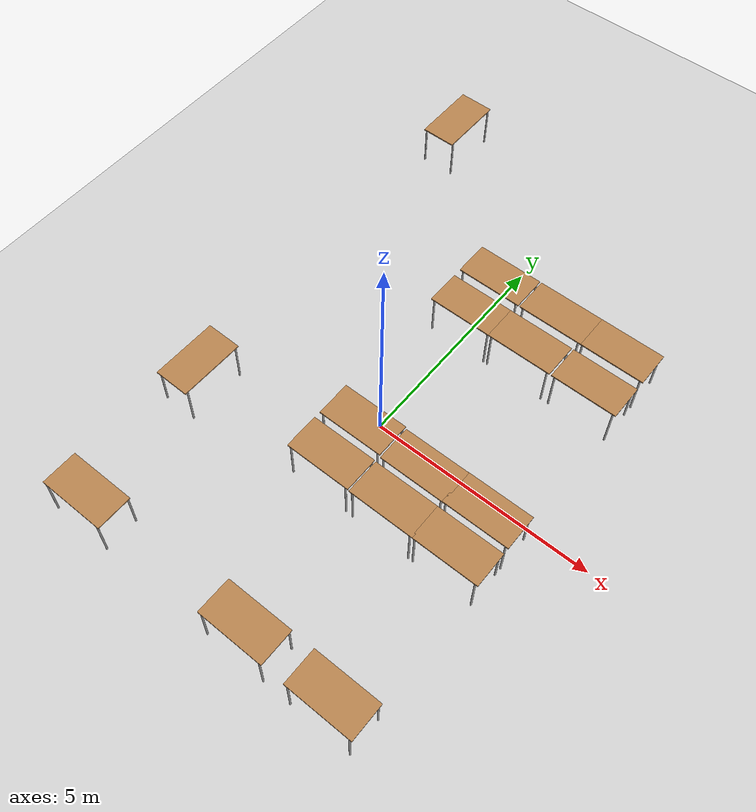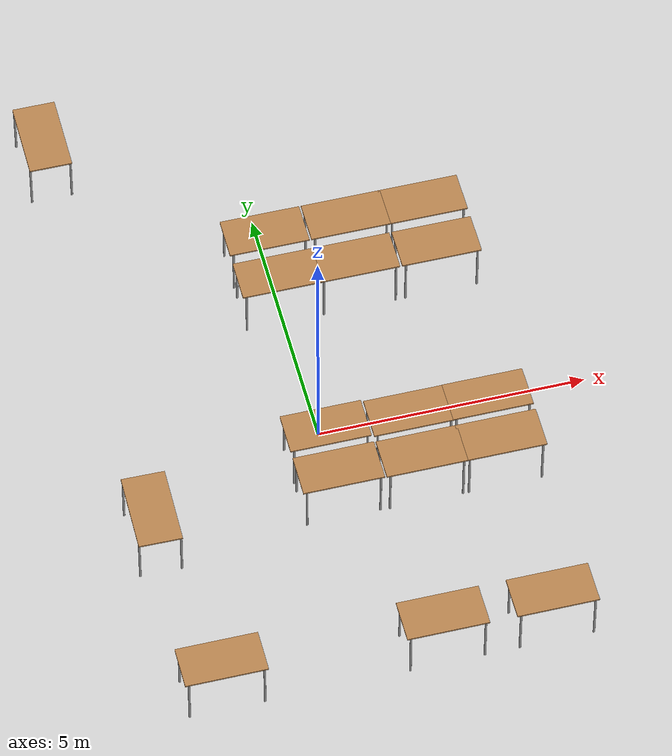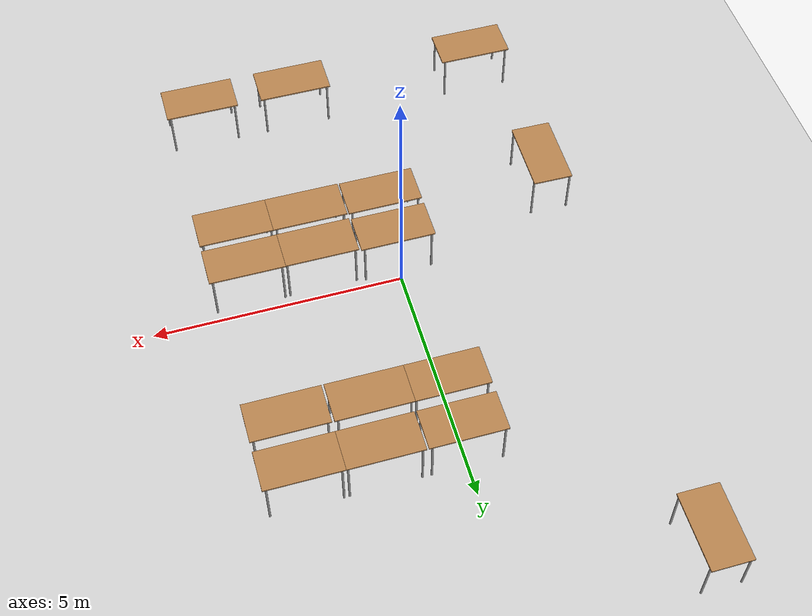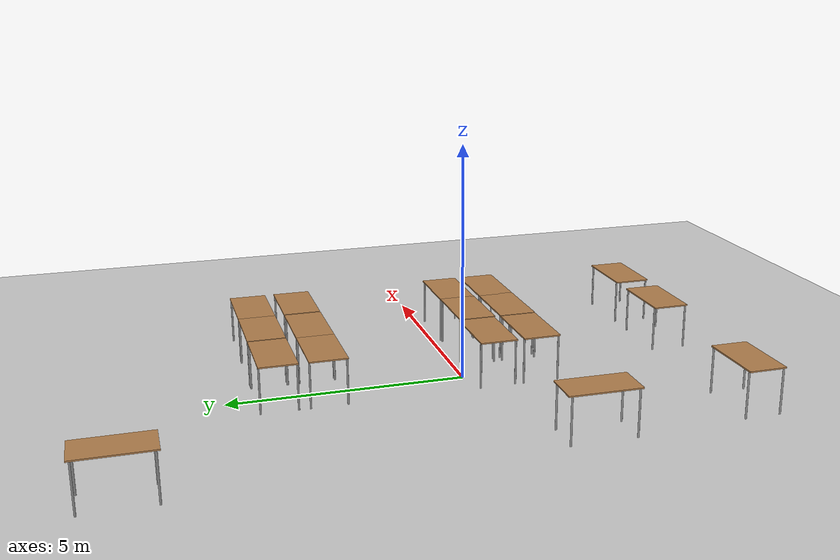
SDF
<sdf version="1.4">
 <world name="default">
  <model name="ground_plane">
   <static>1</static>
   <link name="link">
    <collision name="collision">
     <geometry><plane><normal>0 0 1</normal><size>100 100</size></plane></geometry>
     <surface><friction><ode><mu>100</mu><mu2>50</mu2></ode></friction></surface>
    </collision>
    <visual name="visual">
     <cast_shadows>0</cast_shadows>
     <geometry><plane><normal>0 0 1</normal><size>100 100</size></plane></geometry>
     <material>
      <script><uri>file://media/materials/scripts/gazebo.material</uri><name>Gazebo/Grey</name></script>
     </material>
    </visual>
    <velocity_decay><linear>0</linear><angular>0</angular></velocity_decay>
   </link>
  </model>
  <model name="table">
   <static>1</static>
   <link name="link">
    <collision name="surface">
     <pose>0 0 1 0 -0 0</pose>
     <geometry><box><size>1.5 0.8 0.03</size></box></geometry>
     <surface><friction><ode><mu>0.6</mu><mu2>0.6</mu2></ode></friction></surface>
    </collision>
    <visual name="visual1">
     <pose>0 0 1 0 -0 0</pose>
     <geometry><box><size>1.5 0.8 0.03</size></box></geometry>
     <material>
      <script><uri>file://media/materials/scripts/gazebo.material</uri><name>Gazebo/Wood</name></script>
     </material>
    </visual>
    <collision name="front_left_leg">
     <pose>0.68 0.38 0.5 0 -0 0</pose>
     <geometry><cylinder><radius>0.02</radius><length>1</length></cylinder></geometry>
    </collision>
    <visual name="front_left_leg">
     <pose>0.68 0.38 0.5 0 -0 0</pose>
     <geometry><cylinder><radius>0.02</radius><length>1</length></cylinder></geometry>
     <material>
      <script><uri>file://media/materials/scripts/gazebo.material</uri><name>Gazebo/Grey</name></script>
     </material>
    </visual>
    <collision name="front_right_leg">
     <pose>0.68 -0.38 0.5 0 -0 0</pose>
     <geometry><cylinder><radius>0.02</radius><length>1</length></cylinder></geometry>
    </collision>
    <visual name="front_right_leg">
     <pose>0.68 -0.38 0.5 0 -0 0</pose>
     <geometry><cylinder><radius>0.02</radius><length>1</length></cylinder></geometry>
     <material>
      <script><uri>file://media/materials/scripts/gazebo.material</uri><name>Gazebo/Grey</name></script>
     </material>
    </visual>
    <collision name="back_right_leg">
     <pose>-0.68 -0.38 0.5 0 -0 0</pose>
     <geometry><cylinder><radius>0.02</radius><length>1</length></cylinder></geometry>
    </collision>
    <visual name="back_right_leg">
     <pose>-0.68 -0.38 0.5 0 -0 0</pose>
     <geometry><cylinder><radius>0.02</radius><length>1</length></cylinder></geometry>
     <material>
      <script><uri>file://media/materials/scripts/gazebo.material</uri><name>Gazebo/Grey</name></script>
     </material>
    </visual>
    <collision name="back_left_leg">
     <pose>-0.68 0.38 0.5 0 -0 0</pose>
     <geometry><cylinder><radius>0.02</radius><length>1</length></cylinder></geometry>
    </collision>
    <visual name="back_left_leg">
     <pose>-0.68 0.38 0.5 0 -0 0</pose>
     <geometry><cylinder><radius>0.02</radius><length>1</length></cylinder></geometry>
     <material>
      <script><uri>file://media/materials/scripts/gazebo.material</uri><name>Gazebo/Grey</name></script>
     </material>
    </visual>
    <velocity_decay><linear>0</linear><angular>0</angular></velocity_decay>
   </link>
   <pose>3 -5 0 0 -0 0</pose>
  </model>
  <model name="table_0">
   <static>1</static>
   <link name="link">
    <collision name="surface">
     <pose>0 0 1 0 -0 0</pose>
     <geometry><box><size>1.5 0.8 0.03</size></box></geometry>
     <surface><friction><ode><mu>0.6</mu><mu2>0.6</mu2></ode></friction></surface>
    </collision>
    <visual name="visual1">
     <pose>0 0 1 0 -0 0</pose>
     <geometry><box><size>1.5 0.8 0.03</size></box></geometry>
     <material>
      <script><uri>file://media/materials/scripts/gazebo.material</uri><name>Gazebo/Wood</name></script>
     </material>
    </visual>
    <collision name="front_left_leg">
     <pose>0.68 0.38 0.5 0 -0 0</pose>
     <geometry><cylinder><radius>0.02</radius><length>1</length></cylinder></geometry>
    </collision>
    <visual name="front_left_leg">
     <pose>0.68 0.38 0.5 0 -0 0</pose>
     <geometry><cylinder><radius>0.02</radius><length>1</length></cylinder></geometry>
     <material>
      <script><uri>file://media/materials/scripts/gazebo.material</uri><name>Gazebo/Grey</name></script>
     </material>
    </visual>
    <collision name="front_right_leg">
     <pose>0.68 -0.38 0.5 0 -0 0</pose>
     <geometry><cylinder><radius>0.02</radius><length>1</length></cylinder></geometry>
    </collision>
    <visual name="front_right_leg">
     <pose>0.68 -0.38 0.5 0 -0 0</pose>
     <geometry><cylinder><radius>0.02</radius><length>1</length></cylinder></geometry>
     <material>
      <script><uri>file://media/materials/scripts/gazebo.material</uri><name>Gazebo/Grey</name></script>
     </material>
    </visual>
    <collision name="back_right_leg">
     <pose>-0.68 -0.38 0.5 0 -0 0</pose>
     <geometry><cylinder><radius>0.02</radius><length>1</length></cylinder></geometry>
    </collision>
    <visual name="back_right_leg">
     <pose>-0.68 -0.38 0.5 0 -0 0</pose>
     <geometry><cylinder><radius>0.02</radius><length>1</length></cylinder></geometry>
     <material>
      <script><uri>file://media/materials/scripts/gazebo.material</uri><name>Gazebo/Grey</name></script>
     </material>
    </visual>
    <collision name="back_left_leg">
     <pose>-0.68 0.38 0.5 0 -0 0</pose>
     <geometry><cylinder><radius>0.02</radius><length>1</length></cylinder></geometry>
    </collision>
    <visual name="back_left_leg">
     <pose>-0.68 0.38 0.5 0 -0 0</pose>
     <geometry><cylinder><radius>0.02</radius><length>1</length></cylinder></geometry>
     <material>
      <script><uri>file://media/materials/scripts/gazebo.material</uri><name>Gazebo/Grey</name></script>
     </material>
    </visual>
    <velocity_decay><linear>0</linear><angular>0</angular></velocity_decay>
   </link>
   <pose>1 -5 0 0 -0 0</pose>
  </model>
  <model name="table_1">
   <static>1</static>
   <link name="link">
    <collision name="surface">
     <pose>0 0 1 0 -0 0</pose>
     <geometry><box><size>1.5 0.8 0.03</size></box></geometry>
     <surface><friction><ode><mu>0.6</mu><mu2>0.6</mu2></ode></friction></surface>
    </collision>
    <visual name="visual1">
     <pose>0 0 1 0 -0 0</pose>
     <geometry><box><size>1.5 0.8 0.03</size></box></geometry>
     <material>
      <script><uri>file://media/materials/scripts/gazebo.material</uri><name>Gazebo/Wood</name></script>
     </material>
    </visual>
    <collision name="front_left_leg">
     <pose>0.68 0.38 0.5 0 -0 0</pose>
     <geometry><cylinder><radius>0.02</radius><length>1</length></cylinder></geometry>
    </collision>
    <visual name="front_left_leg">
     <pose>0.68 0.38 0.5 0 -0 0</pose>
     <geometry><cylinder><radius>0.02</radius><length>1</length></cylinder></geometry>
     <material>
      <script><uri>file://media/materials/scripts/gazebo.material</uri><name>Gazebo/Grey</name></script>
     </material>
    </visual>
    <collision name="front_right_leg">
     <pose>0.68 -0.38 0.5 0 -0 0</pose>
     <geometry><cylinder><radius>0.02</radius><length>1</length></cylinder></geometry>
    </collision>
    <visual name="front_right_leg">
     <pose>0.68 -0.38 0.5 0 -0 0</pose>
     <geometry><cylinder><radius>0.02</radius><length>1</length></cylinder></geometry>
     <material>
      <script><uri>file://media/materials/scripts/gazebo.material</uri><name>Gazebo/Grey</name></script>
     </material>
    </visual>
    <collision name="back_right_leg">
     <pose>-0.68 -0.38 0.5 0 -0 0</pose>
     <geometry><cylinder><radius>0.02</radius><length>1</length></cylinder></geometry>
    </collision>
    <visual name="back_right_leg">
     <pose>-0.68 -0.38 0.5 0 -0 0</pose>
     <geometry><cylinder><radius>0.02</radius><length>1</length></cylinder></geometry>
     <material>
      <script><uri>file://media/materials/scripts/gazebo.material</uri><name>Gazebo/Grey</name></script>
     </material>
    </visual>
    <collision name="back_left_leg">
     <pose>-0.68 0.38 0.5 0 -0 0</pose>
     <geometry><cylinder><radius>0.02</radius><length>1</length></cylinder></geometry>
    </collision>
    <visual name="back_left_leg">
     <pose>-0.68 0.38 0.5 0 -0 0</pose>
     <geometry><cylinder><radius>0.02</radius><length>1</length></cylinder></geometry>
     <material>
      <script><uri>file://media/materials/scripts/gazebo.material</uri><name>Gazebo/Grey</name></script>
     </material>
    </visual>
    <velocity_decay><linear>0</linear><angular>0</angular></velocity_decay>
   </link>
   <pose>-3 -5 0 0 -0 0</pose>
  </model>
  <model name="table_2">
   <static>1</static>
   <link name="link">
    <collision name="surface">
     <pose>0 0 1 0 -0 0</pose>
     <geometry><box><size>1.5 0.8 0.03</size></box></geometry>
     <surface><friction><ode><mu>0.6</mu><mu2>0.6</mu2></ode></friction></surface>
    </collision>
    <visual name="visual1">
     <pose>0 0 1 0 -0 0</pose>
     <geometry><box><size>1.5 0.8 0.03</size></box></geometry>
     <material>
      <script><uri>file://media/materials/scripts/gazebo.material</uri><name>Gazebo/Wood</name></script>
     </material>
    </visual>
    <collision name="front_left_leg">
     <pose>0.68 0.38 0.5 0 -0 0</pose>
     <geometry><cylinder><radius>0.02</radius><length>1</length></cylinder></geometry>
    </collision>
    <visual name="front_left_leg">
     <pose>0.68 0.38 0.5 0 -0 0</pose>
     <geometry><cylinder><radius>0.02</radius><length>1</length></cylinder></geometry>
     <material>
      <script><uri>file://media/materials/scripts/gazebo.material</uri><name>Gazebo/Grey</name></script>
     </material>
    </visual>
    <collision name="front_right_leg">
     <pose>0.68 -0.38 0.5 0 -0 0</pose>
     <geometry><cylinder><radius>0.02</radius><length>1</length></cylinder></geometry>
    </collision>
    <visual name="front_right_leg">
     <pose>0.68 -0.38 0.5 0 -0 0</pose>
     <geometry><cylinder><radius>0.02</radius><length>1</length></cylinder></geometry>
     <material>
      <script><uri>file://media/materials/scripts/gazebo.material</uri><name>Gazebo/Grey</name></script>
     </material>
    </visual>
    <collision name="back_right_leg">
     <pose>-0.68 -0.38 0.5 0 -0 0</pose>
     <geometry><cylinder><radius>0.02</radius><length>1</length></cylinder></geometry>
    </collision>
    <visual name="back_right_leg">
     <pose>-0.68 -0.38 0.5 0 -0 0</pose>
     <geometry><cylinder><radius>0.02</radius><length>1</length></cylinder></geometry>
     <material>
      <script><uri>file://media/materials/scripts/gazebo.material</uri><name>Gazebo/Grey</name></script>
     </material>
    </visual>
    <collision name="back_left_leg">
     <pose>-0.68 0.38 0.5 0 -0 0</pose>
     <geometry><cylinder><radius>0.02</radius><length>1</length></cylinder></geometry>
    </collision>
    <visual name="back_left_leg">
     <pose>-0.68 0.38 0.5 0 -0 0</pose>
     <geometry><cylinder><radius>0.02</radius><length>1</length></cylinder></geometry>
     <material>
      <script><uri>file://media/materials/scripts/gazebo.material</uri><name>Gazebo/Grey</name></script>
     </material>
    </visual>
    <velocity_decay><linear>0</linear><angular>0</angular></velocity_decay>
   </link>
   <pose>-3.44394 -1.56964 0 0 -0 1.55567</pose>
  </model>
  <model name="table_3">
   <static>1</static>
   <link name="link">
    <collision name="surface">
     <pose>0 0 1 0 -0 0</pose>
     <geometry><box><size>1.5 0.8 0.03</size></box></geometry>
     <surface><friction><ode><mu>0.6</mu><mu2>0.6</mu2></ode></friction></surface>
    </collision>
    <visual name="visual1">
     <pose>0 0 1 0 -0 0</pose>
     <geometry><box><size>1.5 0.8 0.03</size></box></geometry>
     <material>
      <script><uri>file://media/materials/scripts/gazebo.material</uri><name>Gazebo/Wood</name></script>
     </material>
    </visual>
    <collision name="front_left_leg">
     <pose>0.68 0.38 0.5 0 -0 0</pose>
     <geometry><cylinder><radius>0.02</radius><length>1</length></cylinder></geometry>
    </collision>
    <visual name="front_left_leg">
     <pose>0.68 0.38 0.5 0 -0 0</pose>
     <geometry><cylinder><radius>0.02</radius><length>1</length></cylinder></geometry>
     <material>
      <script><uri>file://media/materials/scripts/gazebo.material</uri><name>Gazebo/Grey</name></script>
     </material>
    </visual>
    <collision name="front_right_leg">
     <pose>0.68 -0.38 0.5 0 -0 0</pose>
     <geometry><cylinder><radius>0.02</radius><length>1</length></cylinder></geometry>
    </collision>
    <visual name="front_right_leg">
     <pose>0.68 -0.38 0.5 0 -0 0</pose>
     <geometry><cylinder><radius>0.02</radius><length>1</length></cylinder></geometry>
     <material>
      <script><uri>file://media/materials/scripts/gazebo.material</uri><name>Gazebo/Grey</name></script>
     </material>
    </visual>
    <collision name="back_right_leg">
     <pose>-0.68 -0.38 0.5 0 -0 0</pose>
     <geometry><cylinder><radius>0.02</radius><length>1</length></cylinder></geometry>
    </collision>
    <visual name="back_right_leg">
     <pose>-0.68 -0.38 0.5 0 -0 0</pose>
     <geometry><cylinder><radius>0.02</radius><length>1</length></cylinder></geometry>
     <material>
      <script><uri>file://media/materials/scripts/gazebo.material</uri><name>Gazebo/Grey</name></script>
     </material>
    </visual>
    <collision name="back_left_leg">
     <pose>-0.68 0.38 0.5 0 -0 0</pose>
     <geometry><cylinder><radius>0.02</radius><length>1</length></cylinder></geometry>
    </collision>
    <visual name="back_left_leg">
     <pose>-0.68 0.38 0.5 0 -0 0</pose>
     <geometry><cylinder><radius>0.02</radius><length>1</length></cylinder></geometry>
     <material>
      <script><uri>file://media/materials/scripts/gazebo.material</uri><name>Gazebo/Grey</name></script>
     </material>
    </visual>
    <velocity_decay><linear>0</linear><angular>0</angular></velocity_decay>
   </link>
   <pose>0 -1.51155 0 0 -0 0</pose>
  </model>
  <model name="table_4">
   <static>1</static>
   <link name="link">
    <collision name="surface">
     <pose>0 0 1 0 -0 0</pose>
     <geometry><box><size>1.5 0.8 0.03</size></box></geometry>
     <surface><friction><ode><mu>0.6</mu><mu2>0.6</mu2></ode></friction></surface>
    </collision>
    <visual name="visual1">
     <pose>0 0 1 0 -0 0</pose>
     <geometry><box><size>1.5 0.8 0.03</size></box></geometry>
     <material>
      <script><uri>file://media/materials/scripts/gazebo.material</uri><name>Gazebo/Wood</name></script>
     </material>
    </visual>
    <collision name="front_left_leg">
     <pose>0.68 0.38 0.5 0 -0 0</pose>
     <geometry><cylinder><radius>0.02</radius><length>1</length></cylinder></geometry>
    </collision>
    <visual name="front_left_leg">
     <pose>0.68 0.38 0.5 0 -0 0</pose>
     <geometry><cylinder><radius>0.02</radius><length>1</length></cylinder></geometry>
     <material>
      <script><uri>file://media/materials/scripts/gazebo.material</uri><name>Gazebo/Grey</name></script>
     </material>
    </visual>
    <collision name="front_right_leg">
     <pose>0.68 -0.38 0.5 0 -0 0</pose>
     <geometry><cylinder><radius>0.02</radius><length>1</length></cylinder></geometry>
    </collision>
    <visual name="front_right_leg">
     <pose>0.68 -0.38 0.5 0 -0 0</pose>
     <geometry><cylinder><radius>0.02</radius><length>1</length></cylinder></geometry>
     <material>
      <script><uri>file://media/materials/scripts/gazebo.material</uri><name>Gazebo/Grey</name></script>
     </material>
    </visual>
    <collision name="back_right_leg">
     <pose>-0.68 -0.38 0.5 0 -0 0</pose>
     <geometry><cylinder><radius>0.02</radius><length>1</length></cylinder></geometry>
    </collision>
    <visual name="back_right_leg">
     <pose>-0.68 -0.38 0.5 0 -0 0</pose>
     <geometry><cylinder><radius>0.02</radius><length>1</length></cylinder></geometry>
     <material>
      <script><uri>file://media/materials/scripts/gazebo.material</uri><name>Gazebo/Grey</name></script>
     </material>
    </visual>
    <collision name="back_left_leg">
     <pose>-0.68 0.38 0.5 0 -0 0</pose>
     <geometry><cylinder><radius>0.02</radius><length>1</length></cylinder></geometry>
    </collision>
    <visual name="back_left_leg">
     <pose>-0.68 0.38 0.5 0 -0 0</pose>
     <geometry><cylinder><radius>0.02</radius><length>1</length></cylinder></geometry>
     <material>
      <script><uri>file://media/materials/scripts/gazebo.material</uri><name>Gazebo/Grey</name></script>
     </material>
    </visual>
    <velocity_decay><linear>0</linear><angular>0</angular></velocity_decay>
   </link>
   <pose>1.53244 -1.52268 0 0 -0 0</pose>
  </model>
  <model name="table_5">
   <static>1</static>
   <link name="link">
    <collision name="surface">
     <pose>0 0 1 0 -0 0</pose>
     <geometry><box><size>1.5 0.8 0.03</size></box></geometry>
     <surface><friction><ode><mu>0.6</mu><mu2>0.6</mu2></ode></friction></surface>
    </collision>
    <visual name="visual1">
     <pose>0 0 1 0 -0 0</pose>
     <geometry><box><size>1.5 0.8 0.03</size></box></geometry>
     <material>
      <script><uri>file://media/materials/scripts/gazebo.material</uri><name>Gazebo/Wood</name></script>
     </material>
    </visual>
    <collision name="front_left_leg">
     <pose>0.68 0.38 0.5 0 -0 0</pose>
     <geometry><cylinder><radius>0.02</radius><length>1</length></cylinder></geometry>
    </collision>
    <visual name="front_left_leg">
     <pose>0.68 0.38 0.5 0 -0 0</pose>
     <geometry><cylinder><radius>0.02</radius><length>1</length></cylinder></geometry>
     <material>
      <script><uri>file://media/materials/scripts/gazebo.material</uri><name>Gazebo/Grey</name></script>
     </material>
    </visual>
    <collision name="front_right_leg">
     <pose>0.68 -0.38 0.5 0 -0 0</pose>
     <geometry><cylinder><radius>0.02</radius><length>1</length></cylinder></geometry>
    </collision>
    <visual name="front_right_leg">
     <pose>0.68 -0.38 0.5 0 -0 0</pose>
     <geometry><cylinder><radius>0.02</radius><length>1</length></cylinder></geometry>
     <material>
      <script><uri>file://media/materials/scripts/gazebo.material</uri><name>Gazebo/Grey</name></script>
     </material>
    </visual>
    <collision name="back_right_leg">
     <pose>-0.68 -0.38 0.5 0 -0 0</pose>
     <geometry><cylinder><radius>0.02</radius><length>1</length></cylinder></geometry>
    </collision>
    <visual name="back_right_leg">
     <pose>-0.68 -0.38 0.5 0 -0 0</pose>
     <geometry><cylinder><radius>0.02</radius><length>1</length></cylinder></geometry>
     <material>
      <script><uri>file://media/materials/scripts/gazebo.material</uri><name>Gazebo/Grey</name></script>
     </material>
    </visual>
    <collision name="back_left_leg">
     <pose>-0.68 0.38 0.5 0 -0 0</pose>
     <geometry><cylinder><radius>0.02</radius><length>1</length></cylinder></geometry>
    </collision>
    <visual name="back_left_leg">
     <pose>-0.68 0.38 0.5 0 -0 0</pose>
     <geometry><cylinder><radius>0.02</radius><length>1</length></cylinder></geometry>
     <material>
      <script><uri>file://media/materials/scripts/gazebo.material</uri><name>Gazebo/Grey</name></script>
     </material>
    </visual>
    <velocity_decay><linear>0</linear><angular>0</angular></velocity_decay>
   </link>
   <pose>3 -1.52315 0 0 -0 0</pose>
  </model>
  <model name="table_6">
   <static>1</static>
   <link name="link">
    <collision name="surface">
     <pose>0 0 1 0 -0 0</pose>
     <geometry><box><size>1.5 0.8 0.03</size></box></geometry>
     <surface><friction><ode><mu>0.6</mu><mu2>0.6</mu2></ode></friction></surface>
    </collision>
    <visual name="visual1">
     <pose>0 0 1 0 -0 0</pose>
     <geometry><box><size>1.5 0.8 0.03</size></box></geometry>
     <material>
      <script><uri>file://media/materials/scripts/gazebo.material</uri><name>Gazebo/Wood</name></script>
     </material>
    </visual>
    <collision name="front_left_leg">
     <pose>0.68 0.38 0.5 0 -0 0</pose>
     <geometry><cylinder><radius>0.02</radius><length>1</length></cylinder></geometry>
    </collision>
    <visual name="front_left_leg">
     <pose>0.68 0.38 0.5 0 -0 0</pose>
     <geometry><cylinder><radius>0.02</radius><length>1</length></cylinder></geometry>
     <material>
      <script><uri>file://media/materials/scripts/gazebo.material</uri><name>Gazebo/Grey</name></script>
     </material>
    </visual>
    <collision name="front_right_leg">
     <pose>0.68 -0.38 0.5 0 -0 0</pose>
     <geometry><cylinder><radius>0.02</radius><length>1</length></cylinder></geometry>
    </collision>
    <visual name="front_right_leg">
     <pose>0.68 -0.38 0.5 0 -0 0</pose>
     <geometry><cylinder><radius>0.02</radius><length>1</length></cylinder></geometry>
     <material>
      <script><uri>file://media/materials/scripts/gazebo.material</uri><name>Gazebo/Grey</name></script>
     </material>
    </visual>
    <collision name="back_right_leg">
     <pose>-0.68 -0.38 0.5 0 -0 0</pose>
     <geometry><cylinder><radius>0.02</radius><length>1</length></cylinder></geometry>
    </collision>
    <visual name="back_right_leg">
     <pose>-0.68 -0.38 0.5 0 -0 0</pose>
     <geometry><cylinder><radius>0.02</radius><length>1</length></cylinder></geometry>
     <material>
      <script><uri>file://media/materials/scripts/gazebo.material</uri><name>Gazebo/Grey</name></script>
     </material>
    </visual>
    <collision name="back_left_leg">
     <pose>-0.68 0.38 0.5 0 -0 0</pose>
     <geometry><cylinder><radius>0.02</radius><length>1</length></cylinder></geometry>
    </collision>
    <visual name="back_left_leg">
     <pose>-0.68 0.38 0.5 0 -0 0</pose>
     <geometry><cylinder><radius>0.02</radius><length>1</length></cylinder></geometry>
     <material>
      <script><uri>file://media/materials/scripts/gazebo.material</uri><name>Gazebo/Grey</name></script>
     </material>
    </visual>
    <velocity_decay><linear>0</linear><angular>0</angular></velocity_decay>
   </link>
   <pose>0 -0.562892 0 0 -0 0</pose>
  </model>
  <model name="table_7">
   <static>1</static>
   <link name="link">
    <collision name="surface">
     <pose>0 0 1 0 -0 0</pose>
     <geometry><box><size>1.5 0.8 0.03</size></box></geometry>
     <surface><friction><ode><mu>0.6</mu><mu2>0.6</mu2></ode></friction></surface>
    </collision>
    <visual name="visual1">
     <pose>0 0 1 0 -0 0</pose>
     <geometry><box><size>1.5 0.8 0.03</size></box></geometry>
     <material>
      <script><uri>file://media/materials/scripts/gazebo.material</uri><name>Gazebo/Wood</name></script>
     </material>
    </visual>
    <collision name="front_left_leg">
     <pose>0.68 0.38 0.5 0 -0 0</pose>
     <geometry><cylinder><radius>0.02</radius><length>1</length></cylinder></geometry>
    </collision>
    <visual name="front_left_leg">
     <pose>0.68 0.38 0.5 0 -0 0</pose>
     <geometry><cylinder><radius>0.02</radius><length>1</length></cylinder></geometry>
     <material>
      <script><uri>file://media/materials/scripts/gazebo.material</uri><name>Gazebo/Grey</name></script>
     </material>
    </visual>
    <collision name="front_right_leg">
     <pose>0.68 -0.38 0.5 0 -0 0</pose>
     <geometry><cylinder><radius>0.02</radius><length>1</length></cylinder></geometry>
    </collision>
    <visual name="front_right_leg">
     <pose>0.68 -0.38 0.5 0 -0 0</pose>
     <geometry><cylinder><radius>0.02</radius><length>1</length></cylinder></geometry>
     <material>
      <script><uri>file://media/materials/scripts/gazebo.material</uri><name>Gazebo/Grey</name></script>
     </material>
    </visual>
    <collision name="back_right_leg">
     <pose>-0.68 -0.38 0.5 0 -0 0</pose>
     <geometry><cylinder><radius>0.02</radius><length>1</length></cylinder></geometry>
    </collision>
    <visual name="back_right_leg">
     <pose>-0.68 -0.38 0.5 0 -0 0</pose>
     <geometry><cylinder><radius>0.02</radius><length>1</length></cylinder></geometry>
     <material>
      <script><uri>file://media/materials/scripts/gazebo.material</uri><name>Gazebo/Grey</name></script>
     </material>
    </visual>
    <collision name="back_left_leg">
     <pose>-0.68 0.38 0.5 0 -0 0</pose>
     <geometry><cylinder><radius>0.02</radius><length>1</length></cylinder></geometry>
    </collision>
    <visual name="back_left_leg">
     <pose>-0.68 0.38 0.5 0 -0 0</pose>
     <geometry><cylinder><radius>0.02</radius><length>1</length></cylinder></geometry>
     <material>
      <script><uri>file://media/materials/scripts/gazebo.material</uri><name>Gazebo/Grey</name></script>
     </material>
    </visual>
    <velocity_decay><linear>0</linear><angular>0</angular></velocity_decay>
   </link>
   <pose>1.5385 -0.598204 0 0 -0 0</pose>
  </model>
  <model name="table_8">
   <static>1</static>
   <link name="link">
    <collision name="surface">
     <pose>0 0 1 0 -0 0</pose>
     <geometry><box><size>1.5 0.8 0.03</size></box></geometry>
     <surface><friction><ode><mu>0.6</mu><mu2>0.6</mu2></ode></friction></surface>
    </collision>
    <visual name="visual1">
     <pose>0 0 1 0 -0 0</pose>
     <geometry><box><size>1.5 0.8 0.03</size></box></geometry>
     <material>
      <script><uri>file://media/materials/scripts/gazebo.material</uri><name>Gazebo/Wood</name></script>
     </material>
    </visual>
    <collision name="front_left_leg">
     <pose>0.68 0.38 0.5 0 -0 0</pose>
     <geometry><cylinder><radius>0.02</radius><length>1</length></cylinder></geometry>
    </collision>
    <visual name="front_left_leg">
     <pose>0.68 0.38 0.5 0 -0 0</pose>
     <geometry><cylinder><radius>0.02</radius><length>1</length></cylinder></geometry>
     <material>
      <script><uri>file://media/materials/scripts/gazebo.material</uri><name>Gazebo/Grey</name></script>
     </material>
    </visual>
    <collision name="front_right_leg">
     <pose>0.68 -0.38 0.5 0 -0 0</pose>
     <geometry><cylinder><radius>0.02</radius><length>1</length></cylinder></geometry>
    </collision>
    <visual name="front_right_leg">
     <pose>0.68 -0.38 0.5 0 -0 0</pose>
     <geometry><cylinder><radius>0.02</radius><length>1</length></cylinder></geometry>
     <material>
      <script><uri>file://media/materials/scripts/gazebo.material</uri><name>Gazebo/Grey</name></script>
     </material>
    </visual>
    <collision name="back_right_leg">
     <pose>-0.68 -0.38 0.5 0 -0 0</pose>
     <geometry><cylinder><radius>0.02</radius><length>1</length></cylinder></geometry>
    </collision>
    <visual name="back_right_leg">
     <pose>-0.68 -0.38 0.5 0 -0 0</pose>
     <geometry><cylinder><radius>0.02</radius><length>1</length></cylinder></geometry>
     <material>
      <script><uri>file://media/materials/scripts/gazebo.material</uri><name>Gazebo/Grey</name></script>
     </material>
    </visual>
    <collision name="back_left_leg">
     <pose>-0.68 0.38 0.5 0 -0 0</pose>
     <geometry><cylinder><radius>0.02</radius><length>1</length></cylinder></geometry>
    </collision>
    <visual name="back_left_leg">
     <pose>-0.68 0.38 0.5 0 -0 0</pose>
     <geometry><cylinder><radius>0.02</radius><length>1</length></cylinder></geometry>
     <material>
      <script><uri>file://media/materials/scripts/gazebo.material</uri><name>Gazebo/Grey</name></script>
     </material>
    </visual>
    <velocity_decay><linear>0</linear><angular>0</angular></velocity_decay>
   </link>
   <pose>3 -0.592507 0 0 -0 0</pose>
  </model>
  <model name="table_9">
   <static>1</static>
   <link name="link">
    <collision name="surface">
     <pose>0 0 1 0 -0 0</pose>
     <geometry><box><size>1.5 0.8 0.03</size></box></geometry>
     <surface><friction><ode><mu>0.6</mu><mu2>0.6</mu2></ode></friction></surface>
    </collision>
    <visual name="visual1">
     <pose>0 0 1 0 -0 0</pose>
     <geometry><box><size>1.5 0.8 0.03</size></box></geometry>
     <material>
      <script><uri>file://media/materials/scripts/gazebo.material</uri><name>Gazebo/Wood</name></script>
     </material>
    </visual>
    <collision name="front_left_leg">
     <pose>0.68 0.38 0.5 0 -0 0</pose>
     <geometry><cylinder><radius>0.02</radius><length>1</length></cylinder></geometry>
    </collision>
    <visual name="front_left_leg">
     <pose>0.68 0.38 0.5 0 -0 0</pose>
     <geometry><cylinder><radius>0.02</radius><length>1</length></cylinder></geometry>
     <material>
      <script><uri>file://media/materials/scripts/gazebo.material</uri><name>Gazebo/Grey</name></script>
     </material>
    </visual>
    <collision name="front_right_leg">
     <pose>0.68 -0.38 0.5 0 -0 0</pose>
     <geometry><cylinder><radius>0.02</radius><length>1</length></cylinder></geometry>
    </collision>
    <visual name="front_right_leg">
     <pose>0.68 -0.38 0.5 0 -0 0</pose>
     <geometry><cylinder><radius>0.02</radius><length>1</length></cylinder></geometry>
     <material>
      <script><uri>file://media/materials/scripts/gazebo.material</uri><name>Gazebo/Grey</name></script>
     </material>
    </visual>
    <collision name="back_right_leg">
     <pose>-0.68 -0.38 0.5 0 -0 0</pose>
     <geometry><cylinder><radius>0.02</radius><length>1</length></cylinder></geometry>
    </collision>
    <visual name="back_right_leg">
     <pose>-0.68 -0.38 0.5 0 -0 0</pose>
     <geometry><cylinder><radius>0.02</radius><length>1</length></cylinder></geometry>
     <material>
      <script><uri>file://media/materials/scripts/gazebo.material</uri><name>Gazebo/Grey</name></script>
     </material>
    </visual>
    <collision name="back_left_leg">
     <pose>-0.68 0.38 0.5 0 -0 0</pose>
     <geometry><cylinder><radius>0.02</radius><length>1</length></cylinder></geometry>
    </collision>
    <visual name="back_left_leg">
     <pose>-0.68 0.38 0.5 0 -0 0</pose>
     <geometry><cylinder><radius>0.02</radius><length>1</length></cylinder></geometry>
     <material>
      <script><uri>file://media/materials/scripts/gazebo.material</uri><name>Gazebo/Grey</name></script>
     </material>
    </visual>
    <velocity_decay><linear>0</linear><angular>0</angular></velocity_decay>
   </link>
   <pose>3 3 0 0 -0 0</pose>
  </model>
  <model name="table_10">
   <static>1</static>
   <link name="link">
    <collision name="surface">
     <pose>0 0 1 0 -0 0</pose>
     <geometry><box><size>1.5 0.8 0.03</size></box></geometry>
     <surface><friction><ode><mu>0.6</mu><mu2>0.6</mu2></ode></friction></surface>
    </collision>
    <visual name="visual1">
     <pose>0 0 1 0 -0 0</pose>
     <geometry><box><size>1.5 0.8 0.03</size></box></geometry>
     <material>
      <script><uri>file://media/materials/scripts/gazebo.material</uri><name>Gazebo/Wood</name></script>
     </material>
    </visual>
    <collision name="front_left_leg">
     <pose>0.68 0.38 0.5 0 -0 0</pose>
     <geometry><cylinder><radius>0.02</radius><length>1</length></cylinder></geometry>
    </collision>
    <visual name="front_left_leg">
     <pose>0.68 0.38 0.5 0 -0 0</pose>
     <geometry><cylinder><radius>0.02</radius><length>1</length></cylinder></geometry>
     <material>
      <script><uri>file://media/materials/scripts/gazebo.material</uri><name>Gazebo/Grey</name></script>
     </material>
    </visual>
    <collision name="front_right_leg">
     <pose>0.68 -0.38 0.5 0 -0 0</pose>
     <geometry><cylinder><radius>0.02</radius><length>1</length></cylinder></geometry>
    </collision>
    <visual name="front_right_leg">
     <pose>0.68 -0.38 0.5 0 -0 0</pose>
     <geometry><cylinder><radius>0.02</radius><length>1</length></cylinder></geometry>
     <material>
      <script><uri>file://media/materials/scripts/gazebo.material</uri><name>Gazebo/Grey</name></script>
     </material>
    </visual>
    <collision name="back_right_leg">
     <pose>-0.68 -0.38 0.5 0 -0 0</pose>
     <geometry><cylinder><radius>0.02</radius><length>1</length></cylinder></geometry>
    </collision>
    <visual name="back_right_leg">
     <pose>-0.68 -0.38 0.5 0 -0 0</pose>
     <geometry><cylinder><radius>0.02</radius><length>1</length></cylinder></geometry>
     <material>
      <script><uri>file://media/materials/scripts/gazebo.material</uri><name>Gazebo/Grey</name></script>
     </material>
    </visual>
    <collision name="back_left_leg">
     <pose>-0.68 0.38 0.5 0 -0 0</pose>
     <geometry><cylinder><radius>0.02</radius><length>1</length></cylinder></geometry>
    </collision>
    <visual name="back_left_leg">
     <pose>-0.68 0.38 0.5 0 -0 0</pose>
     <geometry><cylinder><radius>0.02</radius><length>1</length></cylinder></geometry>
     <material>
      <script><uri>file://media/materials/scripts/gazebo.material</uri><name>Gazebo/Grey</name></script>
     </material>
    </visual>
    <velocity_decay><linear>0</linear><angular>0</angular></velocity_decay>
   </link>
   <pose>1.45547 3 0 0 -0 0</pose>
  </model>
  <model name="table_11">
   <static>1</static>
   <link name="link">
    <collision name="surface">
     <pose>0 0 1 0 -0 0</pose>
     <geometry><box><size>1.5 0.8 0.03</size></box></geometry>
     <surface><friction><ode><mu>0.6</mu><mu2>0.6</mu2></ode></friction></surface>
    </collision>
    <visual name="visual1">
     <pose>0 0 1 0 -0 0</pose>
     <geometry><box><size>1.5 0.8 0.03</size></box></geometry>
     <material>
      <script><uri>file://media/materials/scripts/gazebo.material</uri><name>Gazebo/Wood</name></script>
     </material>
    </visual>
    <collision name="front_left_leg">
     <pose>0.68 0.38 0.5 0 -0 0</pose>
     <geometry><cylinder><radius>0.02</radius><length>1</length></cylinder></geometry>
    </collision>
    <visual name="front_left_leg">
     <pose>0.68 0.38 0.5 0 -0 0</pose>
     <geometry><cylinder><radius>0.02</radius><length>1</length></cylinder></geometry>
     <material>
      <script><uri>file://media/materials/scripts/gazebo.material</uri><name>Gazebo/Grey</name></script>
     </material>
    </visual>
    <collision name="front_right_leg">
     <pose>0.68 -0.38 0.5 0 -0 0</pose>
     <geometry><cylinder><radius>0.02</radius><length>1</length></cylinder></geometry>
    </collision>
    <visual name="front_right_leg">
     <pose>0.68 -0.38 0.5 0 -0 0</pose>
     <geometry><cylinder><radius>0.02</radius><length>1</length></cylinder></geometry>
     <material>
      <script><uri>file://media/materials/scripts/gazebo.material</uri><name>Gazebo/Grey</name></script>
     </material>
    </visual>
    <collision name="back_right_leg">
     <pose>-0.68 -0.38 0.5 0 -0 0</pose>
     <geometry><cylinder><radius>0.02</radius><length>1</length></cylinder></geometry>
    </collision>
    <visual name="back_right_leg">
     <pose>-0.68 -0.38 0.5 0 -0 0</pose>
     <geometry><cylinder><radius>0.02</radius><length>1</length></cylinder></geometry>
     <material>
      <script><uri>file://media/materials/scripts/gazebo.material</uri><name>Gazebo/Grey</name></script>
     </material>
    </visual>
    <collision name="back_left_leg">
     <pose>-0.68 0.38 0.5 0 -0 0</pose>
     <geometry><cylinder><radius>0.02</radius><length>1</length></cylinder></geometry>
    </collision>
    <visual name="back_left_leg">
     <pose>-0.68 0.38 0.5 0 -0 0</pose>
     <geometry><cylinder><radius>0.02</radius><length>1</length></cylinder></geometry>
     <material>
      <script><uri>file://media/materials/scripts/gazebo.material</uri><name>Gazebo/Grey</name></script>
     </material>
    </visual>
    <velocity_decay><linear>0</linear><angular>0</angular></velocity_decay>
   </link>
   <pose>0 3 0 0 -0 0</pose>
  </model>
  <model name="table_12">
   <static>1</static>
   <link name="link">
    <collision name="surface">
     <pose>0 0 1 0 -0 0</pose>
     <geometry><box><size>1.5 0.8 0.03</size></box></geometry>
     <surface><friction><ode><mu>0.6</mu><mu2>0.6</mu2></ode></friction></surface>
    </collision>
    <visual name="visual1">
     <pose>0 0 1 0 -0 0</pose>
     <geometry><box><size>1.5 0.8 0.03</size></box></geometry>
     <material>
      <script><uri>file://media/materials/scripts/gazebo.material</uri><name>Gazebo/Wood</name></script>
     </material>
    </visual>
    <collision name="front_left_leg">
     <pose>0.68 0.38 0.5 0 -0 0</pose>
     <geometry><cylinder><radius>0.02</radius><length>1</length></cylinder></geometry>
    </collision>
    <visual name="front_left_leg">
     <pose>0.68 0.38 0.5 0 -0 0</pose>
     <geometry><cylinder><radius>0.02</radius><length>1</length></cylinder></geometry>
     <material>
      <script><uri>file://media/materials/scripts/gazebo.material</uri><name>Gazebo/Grey</name></script>
     </material>
    </visual>
    <collision name="front_right_leg">
     <pose>0.68 -0.38 0.5 0 -0 0</pose>
     <geometry><cylinder><radius>0.02</radius><length>1</length></cylinder></geometry>
    </collision>
    <visual name="front_right_leg">
     <pose>0.68 -0.38 0.5 0 -0 0</pose>
     <geometry><cylinder><radius>0.02</radius><length>1</length></cylinder></geometry>
     <material>
      <script><uri>file://media/materials/scripts/gazebo.material</uri><name>Gazebo/Grey</name></script>
     </material>
    </visual>
    <collision name="back_right_leg">
     <pose>-0.68 -0.38 0.5 0 -0 0</pose>
     <geometry><cylinder><radius>0.02</radius><length>1</length></cylinder></geometry>
    </collision>
    <visual name="back_right_leg">
     <pose>-0.68 -0.38 0.5 0 -0 0</pose>
     <geometry><cylinder><radius>0.02</radius><length>1</length></cylinder></geometry>
     <material>
      <script><uri>file://media/materials/scripts/gazebo.material</uri><name>Gazebo/Grey</name></script>
     </material>
    </visual>
    <collision name="back_left_leg">
     <pose>-0.68 0.38 0.5 0 -0 0</pose>
     <geometry><cylinder><radius>0.02</radius><length>1</length></cylinder></geometry>
    </collision>
    <visual name="back_left_leg">
     <pose>-0.68 0.38 0.5 0 -0 0</pose>
     <geometry><cylinder><radius>0.02</radius><length>1</length></cylinder></geometry>
     <material>
      <script><uri>file://media/materials/scripts/gazebo.material</uri><name>Gazebo/Grey</name></script>
     </material>
    </visual>
    <velocity_decay><linear>0</linear><angular>0</angular></velocity_decay>
   </link>
   <pose>3 4 0 0 -0 0</pose>
  </model>
  <model name="table_13">
   <static>1</static>
   <link name="link">
    <collision name="surface">
     <pose>0 0 1 0 -0 0</pose>
     <geometry><box><size>1.5 0.8 0.03</size></box></geometry>
     <surface><friction><ode><mu>0.6</mu><mu2>0.6</mu2></ode></friction></surface>
    </collision>
    <visual name="visual1">
     <pose>0 0 1 0 -0 0</pose>
     <geometry><box><size>1.5 0.8 0.03</size></box></geometry>
     <material>
      <script><uri>file://media/materials/scripts/gazebo.material</uri><name>Gazebo/Wood</name></script>
     </material>
    </visual>
    <collision name="front_left_leg">
     <pose>0.68 0.38 0.5 0 -0 0</pose>
     <geometry><cylinder><radius>0.02</radius><length>1</length></cylinder></geometry>
    </collision>
    <visual name="front_left_leg">
     <pose>0.68 0.38 0.5 0 -0 0</pose>
     <geometry><cylinder><radius>0.02</radius><length>1</length></cylinder></geometry>
     <material>
      <script><uri>file://media/materials/scripts/gazebo.material</uri><name>Gazebo/Grey</name></script>
     </material>
    </visual>
    <collision name="front_right_leg">
     <pose>0.68 -0.38 0.5 0 -0 0</pose>
     <geometry><cylinder><radius>0.02</radius><length>1</length></cylinder></geometry>
    </collision>
    <visual name="front_right_leg">
     <pose>0.68 -0.38 0.5 0 -0 0</pose>
     <geometry><cylinder><radius>0.02</radius><length>1</length></cylinder></geometry>
     <material>
      <script><uri>file://media/materials/scripts/gazebo.material</uri><name>Gazebo/Grey</name></script>
     </material>
    </visual>
    <collision name="back_right_leg">
     <pose>-0.68 -0.38 0.5 0 -0 0</pose>
     <geometry><cylinder><radius>0.02</radius><length>1</length></cylinder></geometry>
    </collision>
    <visual name="back_right_leg">
     <pose>-0.68 -0.38 0.5 0 -0 0</pose>
     <geometry><cylinder><radius>0.02</radius><length>1</length></cylinder></geometry>
     <material>
      <script><uri>file://media/materials/scripts/gazebo.material</uri><name>Gazebo/Grey</name></script>
     </material>
    </visual>
    <collision name="back_left_leg">
     <pose>-0.68 0.38 0.5 0 -0 0</pose>
     <geometry><cylinder><radius>0.02</radius><length>1</length></cylinder></geometry>
    </collision>
    <visual name="back_left_leg">
     <pose>-0.68 0.38 0.5 0 -0 0</pose>
     <geometry><cylinder><radius>0.02</radius><length>1</length></cylinder></geometry>
     <material>
      <script><uri>file://media/materials/scripts/gazebo.material</uri><name>Gazebo/Grey</name></script>
     </material>
    </visual>
    <velocity_decay><linear>0</linear><angular>0</angular></velocity_decay>
   </link>
   <pose>1.53675 4 0 0 -0 0</pose>
  </model>
  <model name="table_14">
   <static>1</static>
   <link name="link">
    <collision name="surface">
     <pose>0 0 1 0 -0 0</pose>
     <geometry><box><size>1.5 0.8 0.03</size></box></geometry>
     <surface><friction><ode><mu>0.6</mu><mu2>0.6</mu2></ode></friction></surface>
    </collision>
    <visual name="visual1">
     <pose>0 0 1 0 -0 0</pose>
     <geometry><box><size>1.5 0.8 0.03</size></box></geometry>
     <material>
      <script><uri>file://media/materials/scripts/gazebo.material</uri><name>Gazebo/Wood</name></script>
     </material>
    </visual>
    <collision name="front_left_leg">
     <pose>0.68 0.38 0.5 0 -0 0</pose>
     <geometry><cylinder><radius>0.02</radius><length>1</length></cylinder></geometry>
    </collision>
    <visual name="front_left_leg">
     <pose>0.68 0.38 0.5 0 -0 0</pose>
     <geometry><cylinder><radius>0.02</radius><length>1</length></cylinder></geometry>
     <material>
      <script><uri>file://media/materials/scripts/gazebo.material</uri><name>Gazebo/Grey</name></script>
     </material>
    </visual>
    <collision name="front_right_leg">
     <pose>0.68 -0.38 0.5 0 -0 0</pose>
     <geometry><cylinder><radius>0.02</radius><length>1</length></cylinder></geometry>
    </collision>
    <visual name="front_right_leg">
     <pose>0.68 -0.38 0.5 0 -0 0</pose>
     <geometry><cylinder><radius>0.02</radius><length>1</length></cylinder></geometry>
     <material>
      <script><uri>file://media/materials/scripts/gazebo.material</uri><name>Gazebo/Grey</name></script>
     </material>
    </visual>
    <collision name="back_right_leg">
     <pose>-0.68 -0.38 0.5 0 -0 0</pose>
     <geometry><cylinder><radius>0.02</radius><length>1</length></cylinder></geometry>
    </collision>
    <visual name="back_right_leg">
     <pose>-0.68 -0.38 0.5 0 -0 0</pose>
     <geometry><cylinder><radius>0.02</radius><length>1</length></cylinder></geometry>
     <material>
      <script><uri>file://media/materials/scripts/gazebo.material</uri><name>Gazebo/Grey</name></script>
     </material>
    </visual>
    <collision name="back_left_leg">
     <pose>-0.68 0.38 0.5 0 -0 0</pose>
     <geometry><cylinder><radius>0.02</radius><length>1</length></cylinder></geometry>
    </collision>
    <visual name="back_left_leg">
     <pose>-0.68 0.38 0.5 0 -0 0</pose>
     <geometry><cylinder><radius>0.02</radius><length>1</length></cylinder></geometry>
     <material>
      <script><uri>file://media/materials/scripts/gazebo.material</uri><name>Gazebo/Grey</name></script>
     </material>
    </visual>
    <velocity_decay><linear>0</linear><angular>0</angular></velocity_decay>
   </link>
   <pose>0 4 0 0 -0 0</pose>
  </model>
  <model name="table_15">
   <static>1</static>
   <link name="link">
    <collision name="surface">
     <pose>0 0 1 0 -0 0</pose>
     <geometry><box><size>1.5 0.8 0.03</size></box></geometry>
     <surface><friction><ode><mu>0.6</mu><mu2>0.6</mu2></ode></friction></surface>
    </collision>
    <visual name="visual1">
     <pose>0 0 1 0 -0 0</pose>
     <geometry><box><size>1.5 0.8 0.03</size></box></geometry>
     <material>
      <script><uri>file://media/materials/scripts/gazebo.material</uri><name>Gazebo/Wood</name></script>
     </material>
    </visual>
    <collision name="front_left_leg">
     <pose>0.68 0.38 0.5 0 -0 0</pose>
     <geometry><cylinder><radius>0.02</radius><length>1</length></cylinder></geometry>
    </collision>
    <visual name="front_left_leg">
     <pose>0.68 0.38 0.5 0 -0 0</pose>
     <geometry><cylinder><radius>0.02</radius><length>1</length></cylinder></geometry>
     <material>
      <script><uri>file://media/materials/scripts/gazebo.material</uri><name>Gazebo/Grey</name></script>
     </material>
    </visual>
    <collision name="front_right_leg">
     <pose>0.68 -0.38 0.5 0 -0 0</pose>
     <geometry><cylinder><radius>0.02</radius><length>1</length></cylinder></geometry>
    </collision>
    <visual name="front_right_leg">
     <pose>0.68 -0.38 0.5 0 -0 0</pose>
     <geometry><cylinder><radius>0.02</radius><length>1</length></cylinder></geometry>
     <material>
      <script><uri>file://media/materials/scripts/gazebo.material</uri><name>Gazebo/Grey</name></script>
     </material>
    </visual>
    <collision name="back_right_leg">
     <pose>-0.68 -0.38 0.5 0 -0 0</pose>
     <geometry><cylinder><radius>0.02</radius><length>1</length></cylinder></geometry>
    </collision>
    <visual name="back_right_leg">
     <pose>-0.68 -0.38 0.5 0 -0 0</pose>
     <geometry><cylinder><radius>0.02</radius><length>1</length></cylinder></geometry>
     <material>
      <script><uri>file://media/materials/scripts/gazebo.material</uri><name>Gazebo/Grey</name></script>
     </material>
    </visual>
    <collision name="back_left_leg">
     <pose>-0.68 0.38 0.5 0 -0 0</pose>
     <geometry><cylinder><radius>0.02</radius><length>1</length></cylinder></geometry>
    </collision>
    <visual name="back_left_leg">
     <pose>-0.68 0.38 0.5 0 -0 0</pose>
     <geometry><cylinder><radius>0.02</radius><length>1</length></cylinder></geometry>
     <material>
      <script><uri>file://media/materials/scripts/gazebo.material</uri><name>Gazebo/Grey</name></script>
     </material>
    </visual>
    <velocity_decay><linear>0</linear><angular>0</angular></velocity_decay>
   </link>
   <pose>-3.47187 7.16599 0 0 -0 1.56969</pose>
  </model>
 </world>
</sdf>
